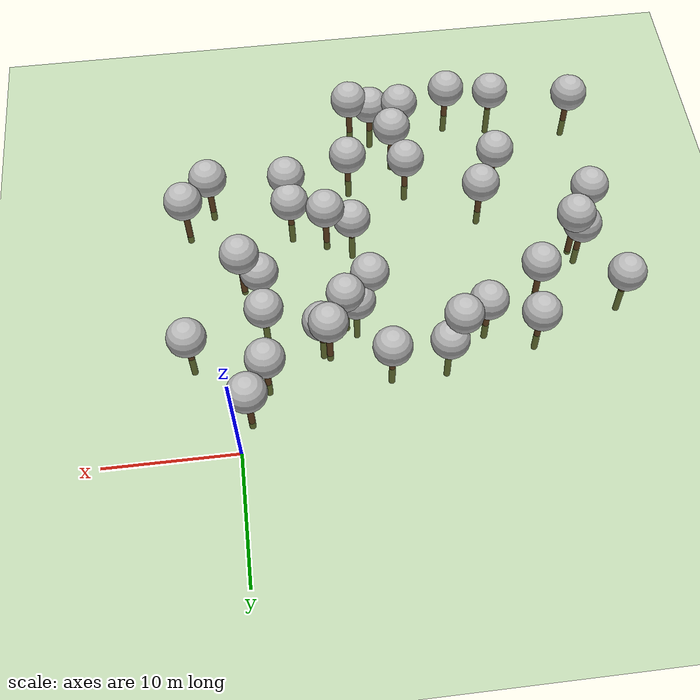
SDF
<sdf version="1.5">
 <world name="default">
  <model name="tree_simple418">
   <static>1</static>
   <link name="link">
    <pose>0 0 0.1 0 -0 0</pose>
    <collision name="collision_trunk">
     <pose>0 0 2 0 -0 0</pose>
     <geometry><cylinder><radius>0.25</radius><length>4</length></cylinder></geometry>
    </collision>
    <collision name="collision_treetop">
     <pose>0 0 5.2 0 -0 0</pose>
     <geometry><sphere><radius>1.5</radius></sphere></geometry>
    </collision>
    <visual name="trunk">
     <pose>0 0 2 0 -0 0</pose>
     <geometry><cylinder><radius>0.25</radius><length>4</length></cylinder></geometry>
     <material>
      <script>
       <uri>model://tree_simple/scripts</uri>
       <uri>model://tree_simple/materials/textures</uri>
       <name>TreeSimple/Trunk</name>
      </script>
     </material>
    </visual>
    <visual name="treetop">
     <pose>0 0 5.2 0 -0 0</pose>
     <geometry><sphere><radius>1.5</radius></sphere></geometry>
     <material>
      <script>
       <uri>model://tree_simple/scripts</uri>
       <uri>model://tree_simple/materials/textures</uri>
       <name>TreeSimple/Treetop</name>
      </script>
     </material>
    </visual>
   </link>
   <pose>-22.9841604277 -7.39292719752 -2.125547375534086 0 -0 0</pose>
  </model>
  <model name="tree_simple415">
   <static>1</static>
   <link name="link">
    <pose>0 0 0.1 0 -0 0</pose>
    <collision name="collision_trunk">
     <pose>0 0 2 0 -0 0</pose>
     <geometry><cylinder><radius>0.25</radius><length>4</length></cylinder></geometry>
    </collision>
    <collision name="collision_treetop">
     <pose>0 0 5.2 0 -0 0</pose>
     <geometry><sphere><radius>1.5</radius></sphere></geometry>
    </collision>
    <visual name="trunk">
     <pose>0 0 2 0 -0 0</pose>
     <geometry><cylinder><radius>0.25</radius><length>4</length></cylinder></geometry>
     <material>
      <script>
       <uri>model://tree_simple/scripts</uri>
       <uri>model://tree_simple/materials/textures</uri>
       <name>TreeSimple/Trunk</name>
      </script>
     </material>
    </visual>
    <visual name="treetop">
     <pose>0 0 5.2 0 -0 0</pose>
     <geometry><sphere><radius>1.5</radius></sphere></geometry>
     <material>
      <script>
       <uri>model://tree_simple/scripts</uri>
       <uri>model://tree_simple/materials/textures</uri>
       <name>TreeSimple/Treetop</name>
      </script>
     </material>
    </visual>
   </link>
   <pose>-11.6355979465 -5.8252534874 -2.2693645882974676 0 -0 0</pose>
  </model>
  <model name="tree_simple395">
   <static>1</static>
   <link name="link">
    <pose>0 0 0.1 0 -0 0</pose>
    <collision name="collision_trunk">
     <pose>0 0 2 0 -0 0</pose>
     <geometry><cylinder><radius>0.25</radius><length>4</length></cylinder></geometry>
    </collision>
    <collision name="collision_treetop">
     <pose>0 0 5.2 0 -0 0</pose>
     <geometry><sphere><radius>1.5</radius></sphere></geometry>
    </collision>
    <visual name="trunk">
     <pose>0 0 2 0 -0 0</pose>
     <geometry><cylinder><radius>0.25</radius><length>4</length></cylinder></geometry>
     <material>
      <script>
       <uri>model://tree_simple/scripts</uri>
       <uri>model://tree_simple/materials/textures</uri>
       <name>TreeSimple/Trunk</name>
      </script>
     </material>
    </visual>
    <visual name="treetop">
     <pose>0 0 5.2 0 -0 0</pose>
     <geometry><sphere><radius>1.5</radius></sphere></geometry>
     <material>
      <script>
       <uri>model://tree_simple/scripts</uri>
       <uri>model://tree_simple/materials/textures</uri>
       <name>TreeSimple/Treetop</name>
      </script>
     </material>
    </visual>
   </link>
   <pose>-14.8909068885 -23.0244241553 -1.9746080177214613 0 -0 0</pose>
  </model>
  <model name="tree_simple392">
   <static>1</static>
   <link name="link">
    <pose>0 0 0.1 0 -0 0</pose>
    <collision name="collision_trunk">
     <pose>0 0 2 0 -0 0</pose>
     <geometry><cylinder><radius>0.25</radius><length>4</length></cylinder></geometry>
    </collision>
    <collision name="collision_treetop">
     <pose>0 0 5.2 0 -0 0</pose>
     <geometry><sphere><radius>1.5</radius></sphere></geometry>
    </collision>
    <visual name="trunk">
     <pose>0 0 2 0 -0 0</pose>
     <geometry><cylinder><radius>0.25</radius><length>4</length></cylinder></geometry>
     <material>
      <script>
       <uri>model://tree_simple/scripts</uri>
       <uri>model://tree_simple/materials/textures</uri>
       <name>TreeSimple/Trunk</name>
      </script>
     </material>
    </visual>
    <visual name="treetop">
     <pose>0 0 5.2 0 -0 0</pose>
     <geometry><sphere><radius>1.5</radius></sphere></geometry>
     <material>
      <script>
       <uri>model://tree_simple/scripts</uri>
       <uri>model://tree_simple/materials/textures</uri>
       <name>TreeSimple/Treetop</name>
      </script>
     </material>
    </visual>
   </link>
   <pose>-2.49227665262 -10.6347787598 -2.871003936643835 0 -0 0</pose>
  </model>
  <model name="tree_simple386">
   <static>1</static>
   <link name="link">
    <pose>0 0 0.1 0 -0 0</pose>
    <collision name="collision_trunk">
     <pose>0 0 2 0 -0 0</pose>
     <geometry><cylinder><radius>0.25</radius><length>4</length></cylinder></geometry>
    </collision>
    <collision name="collision_treetop">
     <pose>0 0 5.2 0 -0 0</pose>
     <geometry><sphere><radius>1.5</radius></sphere></geometry>
    </collision>
    <visual name="trunk">
     <pose>0 0 2 0 -0 0</pose>
     <geometry><cylinder><radius>0.25</radius><length>4</length></cylinder></geometry>
     <material>
      <script>
       <uri>model://tree_simple/scripts</uri>
       <uri>model://tree_simple/materials/textures</uri>
       <name>TreeSimple/Trunk</name>
      </script>
     </material>
    </visual>
    <visual name="treetop">
     <pose>0 0 5.2 0 -0 0</pose>
     <geometry><sphere><radius>1.5</radius></sphere></geometry>
     <material>
      <script>
       <uri>model://tree_simple/scripts</uri>
       <uri>model://tree_simple/materials/textures</uri>
       <name>TreeSimple/Treetop</name>
      </script>
     </material>
    </visual>
   </link>
   <pose>-19.2490777258 -8.77456979873 -2.015333983617731 0 -0 0</pose>
  </model>
  <model name="tree_simple371">
   <static>1</static>
   <link name="link">
    <pose>0 0 0.1 0 -0 0</pose>
    <collision name="collision_trunk">
     <pose>0 0 2 0 -0 0</pose>
     <geometry><cylinder><radius>0.25</radius><length>4</length></cylinder></geometry>
    </collision>
    <collision name="collision_treetop">
     <pose>0 0 5.2 0 -0 0</pose>
     <geometry><sphere><radius>1.5</radius></sphere></geometry>
    </collision>
    <visual name="trunk">
     <pose>0 0 2 0 -0 0</pose>
     <geometry><cylinder><radius>0.25</radius><length>4</length></cylinder></geometry>
     <material>
      <script>
       <uri>model://tree_simple/scripts</uri>
       <uri>model://tree_simple/materials/textures</uri>
       <name>TreeSimple/Trunk</name>
      </script>
     </material>
    </visual>
    <visual name="treetop">
     <pose>0 0 5.2 0 -0 0</pose>
     <geometry><sphere><radius>1.5</radius></sphere></geometry>
     <material>
      <script>
       <uri>model://tree_simple/scripts</uri>
       <uri>model://tree_simple/materials/textures</uri>
       <name>TreeSimple/Treetop</name>
      </script>
     </material>
    </visual>
   </link>
   <pose>-15.0952400949 -28.608477139 -1.480874070484406 0 -0 0</pose>
  </model>
  <model name="tree_simple364">
   <static>1</static>
   <link name="link">
    <pose>0 0 0.1 0 -0 0</pose>
    <collision name="collision_trunk">
     <pose>0 0 2 0 -0 0</pose>
     <geometry><cylinder><radius>0.25</radius><length>4</length></cylinder></geometry>
    </collision>
    <collision name="collision_treetop">
     <pose>0 0 5.2 0 -0 0</pose>
     <geometry><sphere><radius>1.5</radius></sphere></geometry>
    </collision>
    <visual name="trunk">
     <pose>0 0 2 0 -0 0</pose>
     <geometry><cylinder><radius>0.25</radius><length>4</length></cylinder></geometry>
     <material>
      <script>
       <uri>model://tree_simple/scripts</uri>
       <uri>model://tree_simple/materials/textures</uri>
       <name>TreeSimple/Trunk</name>
      </script>
     </material>
    </visual>
    <visual name="treetop">
     <pose>0 0 5.2 0 -0 0</pose>
     <geometry><sphere><radius>1.5</radius></sphere></geometry>
     <material>
      <script>
       <uri>model://tree_simple/scripts</uri>
       <uri>model://tree_simple/materials/textures</uri>
       <name>TreeSimple/Treetop</name>
      </script>
     </material>
    </visual>
   </link>
   <pose>-5.23612591395 -20.1562951187 -2.506918130847321 0 -0 0</pose>
  </model>
  <model name="tree_simple349">
   <static>1</static>
   <link name="link">
    <pose>0 0 0.1 0 -0 0</pose>
    <collision name="collision_trunk">
     <pose>0 0 2 0 -0 0</pose>
     <geometry><cylinder><radius>0.25</radius><length>4</length></cylinder></geometry>
    </collision>
    <collision name="collision_treetop">
     <pose>0 0 5.2 0 -0 0</pose>
     <geometry><sphere><radius>1.5</radius></sphere></geometry>
    </collision>
    <visual name="trunk">
     <pose>0 0 2 0 -0 0</pose>
     <geometry><cylinder><radius>0.25</radius><length>4</length></cylinder></geometry>
     <material>
      <script>
       <uri>model://tree_simple/scripts</uri>
       <uri>model://tree_simple/materials/textures</uri>
       <name>TreeSimple/Trunk</name>
      </script>
     </material>
    </visual>
    <visual name="treetop">
     <pose>0 0 5.2 0 -0 0</pose>
     <geometry><sphere><radius>1.5</radius></sphere></geometry>
     <material>
      <script>
       <uri>model://tree_simple/scripts</uri>
       <uri>model://tree_simple/materials/textures</uri>
       <name>TreeSimple/Treetop</name>
      </script>
     </material>
    </visual>
   </link>
   <pose>-20.4686708935 -19.6389151122 -1.7437597066283173 0 -0 0</pose>
  </model>
  <model name="tree_simple347">
   <static>1</static>
   <link name="link">
    <pose>0 0 0.1 0 -0 0</pose>
    <collision name="collision_trunk">
     <pose>0 0 2 0 -0 0</pose>
     <geometry><cylinder><radius>0.25</radius><length>4</length></cylinder></geometry>
    </collision>
    <collision name="collision_treetop">
     <pose>0 0 5.2 0 -0 0</pose>
     <geometry><sphere><radius>1.5</radius></sphere></geometry>
    </collision>
    <visual name="trunk">
     <pose>0 0 2 0 -0 0</pose>
     <geometry><cylinder><radius>0.25</radius><length>4</length></cylinder></geometry>
     <material>
      <script>
       <uri>model://tree_simple/scripts</uri>
       <uri>model://tree_simple/materials/textures</uri>
       <name>TreeSimple/Trunk</name>
      </script>
     </material>
    </visual>
    <visual name="treetop">
     <pose>0 0 5.2 0 -0 0</pose>
     <geometry><sphere><radius>1.5</radius></sphere></geometry>
     <material>
      <script>
       <uri>model://tree_simple/scripts</uri>
       <uri>model://tree_simple/materials/textures</uri>
       <name>TreeSimple/Treetop</name>
      </script>
     </material>
    </visual>
   </link>
   <pose>-10.2981062424 -24.1175281228 -2.202675830014924 0 -0 0</pose>
  </model>
  <model name="tree_simple322">
   <static>1</static>
   <link name="link">
    <pose>0 0 0.1 0 -0 0</pose>
    <collision name="collision_trunk">
     <pose>0 0 2 0 -0 0</pose>
     <geometry><cylinder><radius>0.25</radius><length>4</length></cylinder></geometry>
    </collision>
    <collision name="collision_treetop">
     <pose>0 0 5.2 0 -0 0</pose>
     <geometry><sphere><radius>1.5</radius></sphere></geometry>
    </collision>
    <visual name="trunk">
     <pose>0 0 2 0 -0 0</pose>
     <geometry><cylinder><radius>0.25</radius><length>4</length></cylinder></geometry>
     <material>
      <script>
       <uri>model://tree_simple/scripts</uri>
       <uri>model://tree_simple/materials/textures</uri>
       <name>TreeSimple/Trunk</name>
      </script>
     </material>
    </visual>
    <visual name="treetop">
     <pose>0 0 5.2 0 -0 0</pose>
     <geometry><sphere><radius>1.5</radius></sphere></geometry>
     <material>
      <script>
       <uri>model://tree_simple/scripts</uri>
       <uri>model://tree_simple/materials/textures</uri>
       <name>TreeSimple/Treetop</name>
      </script>
     </material>
    </visual>
   </link>
   <pose>-10.7837387112 -12.8598856653 -2.757649594055331 0 -0 0</pose>
  </model>
  <model name="tree_simple317">
   <static>1</static>
   <link name="link">
    <pose>0 0 0.1 0 -0 0</pose>
    <collision name="collision_trunk">
     <pose>0 0 2 0 -0 0</pose>
     <geometry><cylinder><radius>0.25</radius><length>4</length></cylinder></geometry>
    </collision>
    <collision name="collision_treetop">
     <pose>0 0 5.2 0 -0 0</pose>
     <geometry><sphere><radius>1.5</radius></sphere></geometry>
    </collision>
    <visual name="trunk">
     <pose>0 0 2 0 -0 0</pose>
     <geometry><cylinder><radius>0.25</radius><length>4</length></cylinder></geometry>
     <material>
      <script>
       <uri>model://tree_simple/scripts</uri>
       <uri>model://tree_simple/materials/textures</uri>
       <name>TreeSimple/Trunk</name>
      </script>
     </material>
    </visual>
    <visual name="treetop">
     <pose>0 0 5.2 0 -0 0</pose>
     <geometry><sphere><radius>1.5</radius></sphere></geometry>
     <material>
      <script>
       <uri>model://tree_simple/scripts</uri>
       <uri>model://tree_simple/materials/textures</uri>
       <name>TreeSimple/Treetop</name>
      </script>
     </material>
    </visual>
   </link>
   <pose>1.01183279708 -22.2370296953 -1.2421728260087828 0 -0 0</pose>
  </model>
  <model name="tree_simple303">
   <static>1</static>
   <link name="link">
    <pose>0 0 0.1 0 -0 0</pose>
    <collision name="collision_trunk">
     <pose>0 0 2 0 -0 0</pose>
     <geometry><cylinder><radius>0.25</radius><length>4</length></cylinder></geometry>
    </collision>
    <collision name="collision_treetop">
     <pose>0 0 5.2 0 -0 0</pose>
     <geometry><sphere><radius>1.5</radius></sphere></geometry>
    </collision>
    <visual name="trunk">
     <pose>0 0 2 0 -0 0</pose>
     <geometry><cylinder><radius>0.25</radius><length>4</length></cylinder></geometry>
     <material>
      <script>
       <uri>model://tree_simple/scripts</uri>
       <uri>model://tree_simple/materials/textures</uri>
       <name>TreeSimple/Trunk</name>
      </script>
     </material>
    </visual>
    <visual name="treetop">
     <pose>0 0 5.2 0 -0 0</pose>
     <geometry><sphere><radius>1.5</radius></sphere></geometry>
     <material>
      <script>
       <uri>model://tree_simple/scripts</uri>
       <uri>model://tree_simple/materials/textures</uri>
       <name>TreeSimple/Treetop</name>
      </script>
     </material>
    </visual>
   </link>
   <pose>-9.56094886719 -11.2139048457 -4.0 0 -0 0</pose>
  </model>
  <model name="tree_simple276">
   <static>1</static>
   <link name="link">
    <pose>0 0 0.1 0 -0 0</pose>
    <collision name="collision_trunk">
     <pose>0 0 2 0 -0 0</pose>
     <geometry><cylinder><radius>0.25</radius><length>4</length></cylinder></geometry>
    </collision>
    <collision name="collision_treetop">
     <pose>0 0 5.2 0 -0 0</pose>
     <geometry><sphere><radius>1.5</radius></sphere></geometry>
    </collision>
    <visual name="trunk">
     <pose>0 0 2 0 -0 0</pose>
     <geometry><cylinder><radius>0.25</radius><length>4</length></cylinder></geometry>
     <material>
      <script>
       <uri>model://tree_simple/scripts</uri>
       <uri>model://tree_simple/materials/textures</uri>
       <name>TreeSimple/Trunk</name>
      </script>
     </material>
    </visual>
    <visual name="treetop">
     <pose>0 0 5.2 0 -0 0</pose>
     <geometry><sphere><radius>1.5</radius></sphere></geometry>
     <material>
      <script>
       <uri>model://tree_simple/scripts</uri>
       <uri>model://tree_simple/materials/textures</uri>
       <name>TreeSimple/Treetop</name>
      </script>
     </material>
    </visual>
   </link>
   <pose>-29.5152065305 -28.5569261037 -2.0663367284723804 0 -0 0</pose>
  </model>
  <model name="tree_simple272">
   <static>1</static>
   <link name="link">
    <pose>0 0 0.1 0 -0 0</pose>
    <collision name="collision_trunk">
     <pose>0 0 2 0 -0 0</pose>
     <geometry><cylinder><radius>0.25</radius><length>4</length></cylinder></geometry>
    </collision>
    <collision name="collision_treetop">
     <pose>0 0 5.2 0 -0 0</pose>
     <geometry><sphere><radius>1.5</radius></sphere></geometry>
    </collision>
    <visual name="trunk">
     <pose>0 0 2 0 -0 0</pose>
     <geometry><cylinder><radius>0.25</radius><length>4</length></cylinder></geometry>
     <material>
      <script>
       <uri>model://tree_simple/scripts</uri>
       <uri>model://tree_simple/materials/textures</uri>
       <name>TreeSimple/Trunk</name>
      </script>
     </material>
    </visual>
    <visual name="treetop">
     <pose>0 0 5.2 0 -0 0</pose>
     <geometry><sphere><radius>1.5</radius></sphere></geometry>
     <material>
      <script>
       <uri>model://tree_simple/scripts</uri>
       <uri>model://tree_simple/materials/textures</uri>
       <name>TreeSimple/Treetop</name>
      </script>
     </material>
    </visual>
   </link>
   <pose>-28.9961141051 -18.3973115949 -1.814120848132125 0 -0 0</pose>
  </model>
  <model name="tree_simple268">
   <static>1</static>
   <link name="link">
    <pose>0 0 0.1 0 -0 0</pose>
    <collision name="collision_trunk">
     <pose>0 0 2 0 -0 0</pose>
     <geometry><cylinder><radius>0.25</radius><length>4</length></cylinder></geometry>
    </collision>
    <collision name="collision_treetop">
     <pose>0 0 5.2 0 -0 0</pose>
     <geometry><sphere><radius>1.5</radius></sphere></geometry>
    </collision>
    <visual name="trunk">
     <pose>0 0 2 0 -0 0</pose>
     <geometry><cylinder><radius>0.25</radius><length>4</length></cylinder></geometry>
     <material>
      <script>
       <uri>model://tree_simple/scripts</uri>
       <uri>model://tree_simple/materials/textures</uri>
       <name>TreeSimple/Trunk</name>
      </script>
     </material>
    </visual>
    <visual name="treetop">
     <pose>0 0 5.2 0 -0 0</pose>
     <geometry><sphere><radius>1.5</radius></sphere></geometry>
     <material>
      <script>
       <uri>model://tree_simple/scripts</uri>
       <uri>model://tree_simple/materials/textures</uri>
       <name>TreeSimple/Treetop</name>
      </script>
     </material>
    </visual>
   </link>
   <pose>-9.9717965144 -18.2645258901 -2.9958766025434667 0 -0 0</pose>
  </model>
  <model name="tree_simple262">
   <static>1</static>
   <link name="link">
    <pose>0 0 0.1 0 -0 0</pose>
    <collision name="collision_trunk">
     <pose>0 0 2 0 -0 0</pose>
     <geometry><cylinder><radius>0.25</radius><length>4</length></cylinder></geometry>
    </collision>
    <collision name="collision_treetop">
     <pose>0 0 5.2 0 -0 0</pose>
     <geometry><sphere><radius>1.5</radius></sphere></geometry>
    </collision>
    <visual name="trunk">
     <pose>0 0 2 0 -0 0</pose>
     <geometry><cylinder><radius>0.25</radius><length>4</length></cylinder></geometry>
     <material>
      <script>
       <uri>model://tree_simple/scripts</uri>
       <uri>model://tree_simple/materials/textures</uri>
       <name>TreeSimple/Trunk</name>
      </script>
     </material>
    </visual>
    <visual name="treetop">
     <pose>0 0 5.2 0 -0 0</pose>
     <geometry><sphere><radius>1.5</radius></sphere></geometry>
     <material>
      <script>
       <uri>model://tree_simple/scripts</uri>
       <uri>model://tree_simple/materials/textures</uri>
       <name>TreeSimple/Treetop</name>
      </script>
     </material>
    </visual>
   </link>
   <pose>-23.2560890967 -30.6191265847 -3.2002073852918462 0 -0 0</pose>
  </model>
  <model name="tree_simple253">
   <static>1</static>
   <link name="link">
    <pose>0 0 0.1 0 -0 0</pose>
    <collision name="collision_trunk">
     <pose>0 0 2 0 -0 0</pose>
     <geometry><cylinder><radius>0.25</radius><length>4</length></cylinder></geometry>
    </collision>
    <collision name="collision_treetop">
     <pose>0 0 5.2 0 -0 0</pose>
     <geometry><sphere><radius>1.5</radius></sphere></geometry>
    </collision>
    <visual name="trunk">
     <pose>0 0 2 0 -0 0</pose>
     <geometry><cylinder><radius>0.25</radius><length>4</length></cylinder></geometry>
     <material>
      <script>
       <uri>model://tree_simple/scripts</uri>
       <uri>model://tree_simple/materials/textures</uri>
       <name>TreeSimple/Trunk</name>
      </script>
     </material>
    </visual>
    <visual name="treetop">
     <pose>0 0 5.2 0 -0 0</pose>
     <geometry><sphere><radius>1.5</radius></sphere></geometry>
     <material>
      <script>
       <uri>model://tree_simple/scripts</uri>
       <uri>model://tree_simple/materials/textures</uri>
       <name>TreeSimple/Treetop</name>
      </script>
     </material>
    </visual>
   </link>
   <pose>-6.71887912458 -8.7537434381 -2.523805565743992 0 -0 0</pose>
  </model>
  <model name="tree_simple234">
   <static>1</static>
   <link name="link">
    <pose>0 0 0.1 0 -0 0</pose>
    <collision name="collision_trunk">
     <pose>0 0 2 0 -0 0</pose>
     <geometry><cylinder><radius>0.25</radius><length>4</length></cylinder></geometry>
    </collision>
    <collision name="collision_treetop">
     <pose>0 0 5.2 0 -0 0</pose>
     <geometry><sphere><radius>1.5</radius></sphere></geometry>
    </collision>
    <visual name="trunk">
     <pose>0 0 2 0 -0 0</pose>
     <geometry><cylinder><radius>0.25</radius><length>4</length></cylinder></geometry>
     <material>
      <script>
       <uri>model://tree_simple/scripts</uri>
       <uri>model://tree_simple/materials/textures</uri>
       <name>TreeSimple/Trunk</name>
      </script>
     </material>
    </visual>
    <visual name="treetop">
     <pose>0 0 5.2 0 -0 0</pose>
     <geometry><sphere><radius>1.5</radius></sphere></geometry>
     <material>
      <script>
       <uri>model://tree_simple/scripts</uri>
       <uri>model://tree_simple/materials/textures</uri>
       <name>TreeSimple/Treetop</name>
      </script>
     </material>
    </visual>
   </link>
   <pose>-7.13671903639 -7.51188908491 -0.8194140978812883 0 -0 0</pose>
  </model>
  <model name="tree_simple201">
   <static>1</static>
   <link name="link">
    <pose>0 0 0.1 0 -0 0</pose>
    <collision name="collision_trunk">
     <pose>0 0 2 0 -0 0</pose>
     <geometry><cylinder><radius>0.25</radius><length>4</length></cylinder></geometry>
    </collision>
    <collision name="collision_treetop">
     <pose>0 0 5.2 0 -0 0</pose>
     <geometry><sphere><radius>1.5</radius></sphere></geometry>
    </collision>
    <visual name="trunk">
     <pose>0 0 2 0 -0 0</pose>
     <geometry><cylinder><radius>0.25</radius><length>4</length></cylinder></geometry>
     <material>
      <script>
       <uri>model://tree_simple/scripts</uri>
       <uri>model://tree_simple/materials/textures</uri>
       <name>TreeSimple/Trunk</name>
      </script>
     </material>
    </visual>
    <visual name="treetop">
     <pose>0 0 5.2 0 -0 0</pose>
     <geometry><sphere><radius>1.5</radius></sphere></geometry>
     <material>
      <script>
       <uri>model://tree_simple/scripts</uri>
       <uri>model://tree_simple/materials/textures</uri>
       <name>TreeSimple/Treetop</name>
      </script>
     </material>
    </visual>
   </link>
   <pose>-16.1062713361 -6.72563548396 -3.7109206157250436 0 -0 0</pose>
  </model>
  <model name="tree_simple200">
   <static>1</static>
   <link name="link">
    <pose>0 0 0.1 0 -0 0</pose>
    <collision name="collision_trunk">
     <pose>0 0 2 0 -0 0</pose>
     <geometry><cylinder><radius>0.25</radius><length>4</length></cylinder></geometry>
    </collision>
    <collision name="collision_treetop">
     <pose>0 0 5.2 0 -0 0</pose>
     <geometry><sphere><radius>1.5</radius></sphere></geometry>
    </collision>
    <visual name="trunk">
     <pose>0 0 2 0 -0 0</pose>
     <geometry><cylinder><radius>0.25</radius><length>4</length></cylinder></geometry>
     <material>
      <script>
       <uri>model://tree_simple/scripts</uri>
       <uri>model://tree_simple/materials/textures</uri>
       <name>TreeSimple/Trunk</name>
      </script>
     </material>
    </visual>
    <visual name="treetop">
     <pose>0 0 5.2 0 -0 0</pose>
     <geometry><sphere><radius>1.5</radius></sphere></geometry>
     <material>
      <script>
       <uri>model://tree_simple/scripts</uri>
       <uri>model://tree_simple/materials/textures</uri>
       <name>TreeSimple/Treetop</name>
      </script>
     </material>
    </visual>
   </link>
   <pose>-22.1853775811 -22.9371972628 -1.7525311585213315 0 -0 0</pose>
  </model>
  <model name="tree_simple195">
   <static>1</static>
   <link name="link">
    <pose>0 0 0.1 0 -0 0</pose>
    <collision name="collision_trunk">
     <pose>0 0 2 0 -0 0</pose>
     <geometry><cylinder><radius>0.25</radius><length>4</length></cylinder></geometry>
    </collision>
    <collision name="collision_treetop">
     <pose>0 0 5.2 0 -0 0</pose>
     <geometry><sphere><radius>1.5</radius></sphere></geometry>
    </collision>
    <visual name="trunk">
     <pose>0 0 2 0 -0 0</pose>
     <geometry><cylinder><radius>0.25</radius><length>4</length></cylinder></geometry>
     <material>
      <script>
       <uri>model://tree_simple/scripts</uri>
       <uri>model://tree_simple/materials/textures</uri>
       <name>TreeSimple/Trunk</name>
      </script>
     </material>
    </visual>
    <visual name="treetop">
     <pose>0 0 5.2 0 -0 0</pose>
     <geometry><sphere><radius>1.5</radius></sphere></geometry>
     <material>
      <script>
       <uri>model://tree_simple/scripts</uri>
       <uri>model://tree_simple/materials/textures</uri>
       <name>TreeSimple/Treetop</name>
      </script>
     </material>
    </visual>
   </link>
   <pose>2.97634626893 -19.931363898 -0.9373310996784356 0 -0 0</pose>
  </model>
  <model name="tree_simple194">
   <static>1</static>
   <link name="link">
    <pose>0 0 0.1 0 -0 0</pose>
    <collision name="collision_trunk">
     <pose>0 0 2 0 -0 0</pose>
     <geometry><cylinder><radius>0.25</radius><length>4</length></cylinder></geometry>
    </collision>
    <collision name="collision_treetop">
     <pose>0 0 5.2 0 -0 0</pose>
     <geometry><sphere><radius>1.5</radius></sphere></geometry>
    </collision>
    <visual name="trunk">
     <pose>0 0 2 0 -0 0</pose>
     <geometry><cylinder><radius>0.25</radius><length>4</length></cylinder></geometry>
     <material>
      <script>
       <uri>model://tree_simple/scripts</uri>
       <uri>model://tree_simple/materials/textures</uri>
       <name>TreeSimple/Trunk</name>
      </script>
     </material>
    </visual>
    <visual name="treetop">
     <pose>0 0 5.2 0 -0 0</pose>
     <geometry><sphere><radius>1.5</radius></sphere></geometry>
     <material>
      <script>
       <uri>model://tree_simple/scripts</uri>
       <uri>model://tree_simple/materials/textures</uri>
       <name>TreeSimple/Treetop</name>
      </script>
     </material>
    </visual>
   </link>
   <pose>-23.6189562951 -11.2622665902 -1.3423844623279384 0 -0 0</pose>
  </model>
  <model name="tree_simple166">
   <static>1</static>
   <link name="link">
    <pose>0 0 0.1 0 -0 0</pose>
    <collision name="collision_trunk">
     <pose>0 0 2 0 -0 0</pose>
     <geometry><cylinder><radius>0.25</radius><length>4</length></cylinder></geometry>
    </collision>
    <collision name="collision_treetop">
     <pose>0 0 5.2 0 -0 0</pose>
     <geometry><sphere><radius>1.5</radius></sphere></geometry>
    </collision>
    <visual name="trunk">
     <pose>0 0 2 0 -0 0</pose>
     <geometry><cylinder><radius>0.25</radius><length>4</length></cylinder></geometry>
     <material>
      <script>
       <uri>model://tree_simple/scripts</uri>
       <uri>model://tree_simple/materials/textures</uri>
       <name>TreeSimple/Trunk</name>
      </script>
     </material>
    </visual>
    <visual name="treetop">
     <pose>0 0 5.2 0 -0 0</pose>
     <geometry><sphere><radius>1.5</radius></sphere></geometry>
     <material>
      <script>
       <uri>model://tree_simple/scripts</uri>
       <uri>model://tree_simple/materials/textures</uri>
       <name>TreeSimple/Treetop</name>
      </script>
     </material>
    </visual>
   </link>
   <pose>-19.3381588268 -30.3399867983 -2.1597086998534016 0 -0 0</pose>
  </model>
  <model name="tree_simple155">
   <static>1</static>
   <link name="link">
    <pose>0 0 0.1 0 -0 0</pose>
    <collision name="collision_trunk">
     <pose>0 0 2 0 -0 0</pose>
     <geometry><cylinder><radius>0.25</radius><length>4</length></cylinder></geometry>
    </collision>
    <collision name="collision_treetop">
     <pose>0 0 5.2 0 -0 0</pose>
     <geometry><sphere><radius>1.5</radius></sphere></geometry>
    </collision>
    <visual name="trunk">
     <pose>0 0 2 0 -0 0</pose>
     <geometry><cylinder><radius>0.25</radius><length>4</length></cylinder></geometry>
     <material>
      <script>
       <uri>model://tree_simple/scripts</uri>
       <uri>model://tree_simple/materials/textures</uri>
       <name>TreeSimple/Trunk</name>
      </script>
     </material>
    </visual>
    <visual name="treetop">
     <pose>0 0 5.2 0 -0 0</pose>
     <geometry><sphere><radius>1.5</radius></sphere></geometry>
     <material>
      <script>
       <uri>model://tree_simple/scripts</uri>
       <uri>model://tree_simple/materials/textures</uri>
       <name>TreeSimple/Treetop</name>
      </script>
     </material>
    </visual>
   </link>
   <pose>-2.3717624472 -13.9733365428 -2.8842393746550266 0 -0 0</pose>
  </model>
  <model name="tree_simple154">
   <static>1</static>
   <link name="link">
    <pose>0 0 0.1 0 -0 0</pose>
    <collision name="collision_trunk">
     <pose>0 0 2 0 -0 0</pose>
     <geometry><cylinder><radius>0.25</radius><length>4</length></cylinder></geometry>
    </collision>
    <collision name="collision_treetop">
     <pose>0 0 5.2 0 -0 0</pose>
     <geometry><sphere><radius>1.5</radius></sphere></geometry>
    </collision>
    <visual name="trunk">
     <pose>0 0 2 0 -0 0</pose>
     <geometry><cylinder><radius>0.25</radius><length>4</length></cylinder></geometry>
     <material>
      <script>
       <uri>model://tree_simple/scripts</uri>
       <uri>model://tree_simple/materials/textures</uri>
       <name>TreeSimple/Trunk</name>
      </script>
     </material>
    </visual>
    <visual name="treetop">
     <pose>0 0 5.2 0 -0 0</pose>
     <geometry><sphere><radius>1.5</radius></sphere></geometry>
     <material>
      <script>
       <uri>model://tree_simple/scripts</uri>
       <uri>model://tree_simple/materials/textures</uri>
       <name>TreeSimple/Treetop</name>
      </script>
     </material>
    </visual>
   </link>
   <pose>3.295584565 -8.44091810905 -2.4142892620135394 0 -0 0</pose>
  </model>
  <model name="tree_simple152">
   <static>1</static>
   <link name="link">
    <pose>0 0 0.1 0 -0 0</pose>
    <collision name="collision_trunk">
     <pose>0 0 2 0 -0 0</pose>
     <geometry><cylinder><radius>0.25</radius><length>4</length></cylinder></geometry>
    </collision>
    <collision name="collision_treetop">
     <pose>0 0 5.2 0 -0 0</pose>
     <geometry><sphere><radius>1.5</radius></sphere></geometry>
    </collision>
    <visual name="trunk">
     <pose>0 0 2 0 -0 0</pose>
     <geometry><cylinder><radius>0.25</radius><length>4</length></cylinder></geometry>
     <material>
      <script>
       <uri>model://tree_simple/scripts</uri>
       <uri>model://tree_simple/materials/textures</uri>
       <name>TreeSimple/Trunk</name>
      </script>
     </material>
    </visual>
    <visual name="treetop">
     <pose>0 0 5.2 0 -0 0</pose>
     <geometry><sphere><radius>1.5</radius></sphere></geometry>
     <material>
      <script>
       <uri>model://tree_simple/scripts</uri>
       <uri>model://tree_simple/materials/textures</uri>
       <name>TreeSimple/Treetop</name>
      </script>
     </material>
    </visual>
   </link>
   <pose>-12.7268570034 -29.4125065477 -2.313563173255682 0 -0 0</pose>
  </model>
  <model name="tree_simple149">
   <static>1</static>
   <link name="link">
    <pose>0 0 0.1 0 -0 0</pose>
    <collision name="collision_trunk">
     <pose>0 0 2 0 -0 0</pose>
     <geometry><cylinder><radius>0.25</radius><length>4</length></cylinder></geometry>
    </collision>
    <collision name="collision_treetop">
     <pose>0 0 5.2 0 -0 0</pose>
     <geometry><sphere><radius>1.5</radius></sphere></geometry>
    </collision>
    <visual name="trunk">
     <pose>0 0 2 0 -0 0</pose>
     <geometry><cylinder><radius>0.25</radius><length>4</length></cylinder></geometry>
     <material>
      <script>
       <uri>model://tree_simple/scripts</uri>
       <uri>model://tree_simple/materials/textures</uri>
       <name>TreeSimple/Trunk</name>
      </script>
     </material>
    </visual>
    <visual name="treetop">
     <pose>0 0 5.2 0 -0 0</pose>
     <geometry><sphere><radius>1.5</radius></sphere></geometry>
     <material>
      <script>
       <uri>model://tree_simple/scripts</uri>
       <uri>model://tree_simple/materials/textures</uri>
       <name>TreeSimple/Treetop</name>
      </script>
     </material>
    </visual>
   </link>
   <pose>-30.3771264781 -10.615045033 -2.9288017541559244 0 -0 0</pose>
  </model>
  <model name="tree_simple140">
   <static>1</static>
   <link name="link">
    <pose>0 0 0.1 0 -0 0</pose>
    <collision name="collision_trunk">
     <pose>0 0 2 0 -0 0</pose>
     <geometry><cylinder><radius>0.25</radius><length>4</length></cylinder></geometry>
    </collision>
    <collision name="collision_treetop">
     <pose>0 0 5.2 0 -0 0</pose>
     <geometry><sphere><radius>1.5</radius></sphere></geometry>
    </collision>
    <visual name="trunk">
     <pose>0 0 2 0 -0 0</pose>
     <geometry><cylinder><radius>0.25</radius><length>4</length></cylinder></geometry>
     <material>
      <script>
       <uri>model://tree_simple/scripts</uri>
       <uri>model://tree_simple/materials/textures</uri>
       <name>TreeSimple/Trunk</name>
      </script>
     </material>
    </visual>
    <visual name="treetop">
     <pose>0 0 5.2 0 -0 0</pose>
     <geometry><sphere><radius>1.5</radius></sphere></geometry>
     <material>
      <script>
       <uri>model://tree_simple/scripts</uri>
       <uri>model://tree_simple/materials/textures</uri>
       <name>TreeSimple/Treetop</name>
      </script>
     </material>
    </visual>
   </link>
   <pose>-1.08104360216 -14.0922455385 -0.5173915476220012 0 -0 0</pose>
  </model>
  <model name="tree_simple138">
   <static>1</static>
   <link name="link">
    <pose>0 0 0.1 0 -0 0</pose>
    <collision name="collision_trunk">
     <pose>0 0 2 0 -0 0</pose>
     <geometry><cylinder><radius>0.25</radius><length>4</length></cylinder></geometry>
    </collision>
    <collision name="collision_treetop">
     <pose>0 0 5.2 0 -0 0</pose>
     <geometry><sphere><radius>1.5</radius></sphere></geometry>
    </collision>
    <visual name="trunk">
     <pose>0 0 2 0 -0 0</pose>
     <geometry><cylinder><radius>0.25</radius><length>4</length></cylinder></geometry>
     <material>
      <script>
       <uri>model://tree_simple/scripts</uri>
       <uri>model://tree_simple/materials/textures</uri>
       <name>TreeSimple/Trunk</name>
      </script>
     </material>
    </visual>
    <visual name="treetop">
     <pose>0 0 5.2 0 -0 0</pose>
     <geometry><sphere><radius>1.5</radius></sphere></geometry>
     <material>
      <script>
       <uri>model://tree_simple/scripts</uri>
       <uri>model://tree_simple/materials/textures</uri>
       <name>TreeSimple/Treetop</name>
      </script>
     </material>
    </visual>
   </link>
   <pose>-8.7404095495 -11.2488158501 -2.8430406995723985 0 -0 0</pose>
  </model>
  <model name="tree_simple106">
   <static>1</static>
   <link name="link">
    <pose>0 0 0.1 0 -0 0</pose>
    <collision name="collision_trunk">
     <pose>0 0 2 0 -0 0</pose>
     <geometry><cylinder><radius>0.25</radius><length>4</length></cylinder></geometry>
    </collision>
    <collision name="collision_treetop">
     <pose>0 0 5.2 0 -0 0</pose>
     <geometry><sphere><radius>1.5</radius></sphere></geometry>
    </collision>
    <visual name="trunk">
     <pose>0 0 2 0 -0 0</pose>
     <geometry><cylinder><radius>0.25</radius><length>4</length></cylinder></geometry>
     <material>
      <script>
       <uri>model://tree_simple/scripts</uri>
       <uri>model://tree_simple/materials/textures</uri>
       <name>TreeSimple/Trunk</name>
      </script>
     </material>
    </visual>
    <visual name="treetop">
     <pose>0 0 5.2 0 -0 0</pose>
     <geometry><sphere><radius>1.5</radius></sphere></geometry>
     <material>
      <script>
       <uri>model://tree_simple/scripts</uri>
       <uri>model://tree_simple/materials/textures</uri>
       <name>TreeSimple/Treetop</name>
      </script>
     </material>
    </visual>
   </link>
   <pose>-0.906213194622 -2.57618131058 -0.9667231008420301 0 -0 0</pose>
  </model>
  <model name="tree_simple89">
   <static>1</static>
   <link name="link">
    <pose>0 0 0.1 0 -0 0</pose>
    <collision name="collision_trunk">
     <pose>0 0 2 0 -0 0</pose>
     <geometry><cylinder><radius>0.25</radius><length>4</length></cylinder></geometry>
    </collision>
    <collision name="collision_treetop">
     <pose>0 0 5.2 0 -0 0</pose>
     <geometry><sphere><radius>1.5</radius></sphere></geometry>
    </collision>
    <visual name="trunk">
     <pose>0 0 2 0 -0 0</pose>
     <geometry><cylinder><radius>0.25</radius><length>4</length></cylinder></geometry>
     <material>
      <script>
       <uri>model://tree_simple/scripts</uri>
       <uri>model://tree_simple/materials/textures</uri>
       <name>TreeSimple/Trunk</name>
      </script>
     </material>
    </visual>
    <visual name="treetop">
     <pose>0 0 5.2 0 -0 0</pose>
     <geometry><sphere><radius>1.5</radius></sphere></geometry>
     <material>
      <script>
       <uri>model://tree_simple/scripts</uri>
       <uri>model://tree_simple/materials/textures</uri>
       <name>TreeSimple/Treetop</name>
      </script>
     </material>
    </visual>
   </link>
   <pose>-14.0445145291 -25.4354437198 -0.7227582405695006 0 -0 0</pose>
  </model>
  <model name="tree_simple76">
   <static>1</static>
   <link name="link">
    <pose>0 0 0.1 0 -0 0</pose>
    <collision name="collision_trunk">
     <pose>0 0 2 0 -0 0</pose>
     <geometry><cylinder><radius>0.25</radius><length>4</length></cylinder></geometry>
    </collision>
    <collision name="collision_treetop">
     <pose>0 0 5.2 0 -0 0</pose>
     <geometry><sphere><radius>1.5</radius></sphere></geometry>
    </collision>
    <visual name="trunk">
     <pose>0 0 2 0 -0 0</pose>
     <geometry><cylinder><radius>0.25</radius><length>4</length></cylinder></geometry>
     <material>
      <script>
       <uri>model://tree_simple/scripts</uri>
       <uri>model://tree_simple/materials/textures</uri>
       <name>TreeSimple/Trunk</name>
      </script>
     </material>
    </visual>
    <visual name="treetop">
     <pose>0 0 5.2 0 -0 0</pose>
     <geometry><sphere><radius>1.5</radius></sphere></geometry>
     <material>
      <script>
       <uri>model://tree_simple/scripts</uri>
       <uri>model://tree_simple/materials/textures</uri>
       <name>TreeSimple/Treetop</name>
      </script>
     </material>
    </visual>
   </link>
   <pose>-27.7086729522 -14.9466841588 -2.0606377553129196 0 -0 0</pose>
  </model>
  <model name="tree_simple64">
   <static>1</static>
   <link name="link">
    <pose>0 0 0.1 0 -0 0</pose>
    <collision name="collision_trunk">
     <pose>0 0 2 0 -0 0</pose>
     <geometry><cylinder><radius>0.25</radius><length>4</length></cylinder></geometry>
    </collision>
    <collision name="collision_treetop">
     <pose>0 0 5.2 0 -0 0</pose>
     <geometry><sphere><radius>1.5</radius></sphere></geometry>
    </collision>
    <visual name="trunk">
     <pose>0 0 2 0 -0 0</pose>
     <geometry><cylinder><radius>0.25</radius><length>4</length></cylinder></geometry>
     <material>
      <script>
       <uri>model://tree_simple/scripts</uri>
       <uri>model://tree_simple/materials/textures</uri>
       <name>TreeSimple/Trunk</name>
      </script>
     </material>
    </visual>
    <visual name="treetop">
     <pose>0 0 5.2 0 -0 0</pose>
     <geometry><sphere><radius>1.5</radius></sphere></geometry>
     <material>
      <script>
       <uri>model://tree_simple/scripts</uri>
       <uri>model://tree_simple/materials/textures</uri>
       <name>TreeSimple/Treetop</name>
      </script>
     </material>
    </visual>
   </link>
   <pose>-5.16461725533 -22.1747780475 -1.7003745552412306 0 -0 0</pose>
  </model>
  <model name="tree_simple50">
   <static>1</static>
   <link name="link">
    <pose>0 0 0.1 0 -0 0</pose>
    <collision name="collision_trunk">
     <pose>0 0 2 0 -0 0</pose>
     <geometry><cylinder><radius>0.25</radius><length>4</length></cylinder></geometry>
    </collision>
    <collision name="collision_treetop">
     <pose>0 0 5.2 0 -0 0</pose>
     <geometry><sphere><radius>1.5</radius></sphere></geometry>
    </collision>
    <visual name="trunk">
     <pose>0 0 2 0 -0 0</pose>
     <geometry><cylinder><radius>0.25</radius><length>4</length></cylinder></geometry>
     <material>
      <script>
       <uri>model://tree_simple/scripts</uri>
       <uri>model://tree_simple/materials/textures</uri>
       <name>TreeSimple/Trunk</name>
      </script>
     </material>
    </visual>
    <visual name="treetop">
     <pose>0 0 5.2 0 -0 0</pose>
     <geometry><sphere><radius>1.5</radius></sphere></geometry>
     <material>
      <script>
       <uri>model://tree_simple/scripts</uri>
       <uri>model://tree_simple/materials/textures</uri>
       <name>TreeSimple/Treetop</name>
      </script>
     </material>
    </visual>
   </link>
   <pose>-11.0023085291 -29.4422071398 -1.4974485547049403 0 -0 0</pose>
  </model>
  <model name="tree_simple37">
   <static>1</static>
   <link name="link">
    <pose>0 0 0.1 0 -0 0</pose>
    <collision name="collision_trunk">
     <pose>0 0 2 0 -0 0</pose>
     <geometry><cylinder><radius>0.25</radius><length>4</length></cylinder></geometry>
    </collision>
    <collision name="collision_treetop">
     <pose>0 0 5.2 0 -0 0</pose>
     <geometry><sphere><radius>1.5</radius></sphere></geometry>
    </collision>
    <visual name="trunk">
     <pose>0 0 2 0 -0 0</pose>
     <geometry><cylinder><radius>0.25</radius><length>4</length></cylinder></geometry>
     <material>
      <script>
       <uri>model://tree_simple/scripts</uri>
       <uri>model://tree_simple/materials/textures</uri>
       <name>TreeSimple/Trunk</name>
      </script>
     </material>
    </visual>
    <visual name="treetop">
     <pose>0 0 5.2 0 -0 0</pose>
     <geometry><sphere><radius>1.5</radius></sphere></geometry>
     <material>
      <script>
       <uri>model://tree_simple/scripts</uri>
       <uri>model://tree_simple/materials/textures</uri>
       <name>TreeSimple/Treetop</name>
      </script>
     </material>
    </visual>
   </link>
   <pose>-17.1200971999 -7.42377639458 -1.388303582981926 0 -0 0</pose>
  </model>
  <model name="tree_simple18">
   <static>1</static>
   <link name="link">
    <pose>0 0 0.1 0 -0 0</pose>
    <collision name="collision_trunk">
     <pose>0 0 2 0 -0 0</pose>
     <geometry><cylinder><radius>0.25</radius><length>4</length></cylinder></geometry>
    </collision>
    <collision name="collision_treetop">
     <pose>0 0 5.2 0 -0 0</pose>
     <geometry><sphere><radius>1.5</radius></sphere></geometry>
    </collision>
    <visual name="trunk">
     <pose>0 0 2 0 -0 0</pose>
     <geometry><cylinder><radius>0.25</radius><length>4</length></cylinder></geometry>
     <material>
      <script>
       <uri>model://tree_simple/scripts</uri>
       <uri>model://tree_simple/materials/textures</uri>
       <name>TreeSimple/Trunk</name>
      </script>
     </material>
    </visual>
    <visual name="treetop">
     <pose>0 0 5.2 0 -0 0</pose>
     <geometry><sphere><radius>1.5</radius></sphere></geometry>
     <material>
      <script>
       <uri>model://tree_simple/scripts</uri>
       <uri>model://tree_simple/materials/textures</uri>
       <name>TreeSimple/Treetop</name>
      </script>
     </material>
    </visual>
   </link>
   <pose>-7.91294561281 -18.0894598626 -1.135205039984573 0 -0 0</pose>
  </model>
  <model name="tree_simple14">
   <static>1</static>
   <link name="link">
    <pose>0 0 0.1 0 -0 0</pose>
    <collision name="collision_trunk">
     <pose>0 0 2 0 -0 0</pose>
     <geometry><cylinder><radius>0.25</radius><length>4</length></cylinder></geometry>
    </collision>
    <collision name="collision_treetop">
     <pose>0 0 5.2 0 -0 0</pose>
     <geometry><sphere><radius>1.5</radius></sphere></geometry>
    </collision>
    <visual name="trunk">
     <pose>0 0 2 0 -0 0</pose>
     <geometry><cylinder><radius>0.25</radius><length>4</length></cylinder></geometry>
     <material>
      <script>
       <uri>model://tree_simple/scripts</uri>
       <uri>model://tree_simple/materials/textures</uri>
       <name>TreeSimple/Trunk</name>
      </script>
     </material>
    </visual>
    <visual name="treetop">
     <pose>0 0 5.2 0 -0 0</pose>
     <geometry><sphere><radius>1.5</radius></sphere></geometry>
     <material>
      <script>
       <uri>model://tree_simple/scripts</uri>
       <uri>model://tree_simple/materials/textures</uri>
       <name>TreeSimple/Treetop</name>
      </script>
     </material>
    </visual>
   </link>
   <pose>-26.972464012 -14.858879135 -0.5027919090841968 0 -0 0</pose>
  </model>
  <model name="tree_simple2">
   <static>1</static>
   <link name="link">
    <pose>0 0 0.1 0 -0 0</pose>
    <collision name="collision_trunk">
     <pose>0 0 2 0 -0 0</pose>
     <geometry><cylinder><radius>0.25</radius><length>4</length></cylinder></geometry>
    </collision>
    <collision name="collision_treetop">
     <pose>0 0 5.2 0 -0 0</pose>
     <geometry><sphere><radius>1.5</radius></sphere></geometry>
    </collision>
    <visual name="trunk">
     <pose>0 0 2 0 -0 0</pose>
     <geometry><cylinder><radius>0.25</radius><length>4</length></cylinder></geometry>
     <material>
      <script>
       <uri>model://tree_simple/scripts</uri>
       <uri>model://tree_simple/materials/textures</uri>
       <name>TreeSimple/Trunk</name>
      </script>
     </material>
    </visual>
    <visual name="treetop">
     <pose>0 0 5.2 0 -0 0</pose>
     <geometry><sphere><radius>1.5</radius></sphere></geometry>
     <material>
      <script>
       <uri>model://tree_simple/scripts</uri>
       <uri>model://tree_simple/materials/textures</uri>
       <name>TreeSimple/Treetop</name>
      </script>
     </material>
    </visual>
   </link>
   <pose>-2.32374702534 -5.59991455471 -1.697323078708024 0 -0 0</pose>
  </model>
  <model name="ground_plane">
   <static>true</static>
   <link name="link">
    <collision name="collision">
     <geometry><plane><normal>0 0 1</normal><size>250 250</size></plane></geometry>
     <surface><friction><ode><mu>1</mu><mu2>1</mu2></ode></friction></surface>
    </collision>
    <visual name="grass">
     <cast_shadows>false</cast_shadows>
     <geometry><plane><normal>0 0 1</normal><size>150 250</size></plane></geometry>
     <material>
      <script><uri>file://media/materials/scripts/Gazebo.material</uri><name>Gazebo/Grass</name></script>
     </material>
    </visual>
   </link>
  </model>
 </world>
</sdf>
